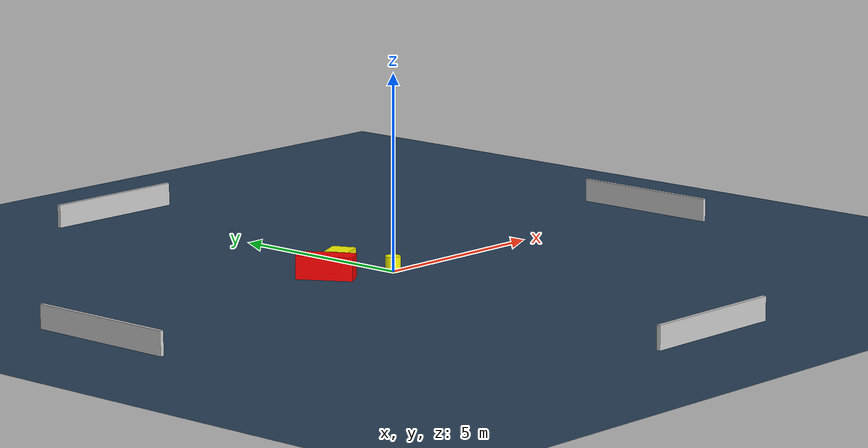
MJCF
<?xml version="1.0" ?>
<mujoco model="generated_environment">
  <option timestep="0.01" integrator="RK4" cone="elliptic"/>
  <default>
    <geom density="1"/>
  </default>
  <asset>
    <texture builtin="gradient" height="3072" name="skybox" rgb1="0.3 0.5 0.7" rgb2="0 0 0" type="skybox" width="512"/>
    <texture builtin="checker" height="300" name="groundplane" rgb1="0.2 0.3 0.4" rgb2="0.1 0.2 0.3" type="2d" width="300"/>
    <material name="groundplane" reflectance="0.2" texrepeat="5 5" texture="groundplane"/>
  </asset>
  <worldbody>
    <light dir="0 0 -1" directional="true" pos="0 0 1.5"/>
    <geom condim="3" friction="0.5 0.005 0.001" material="groundplane" name="floor" pos="0 0 0" size="0 0 0.05" type="plane"/>
    <body name="walls">
      <geom name="wall_1" condim="4" pos="-10.0 0.0 0.3" rgba="0.800000011920929 0.800000011920929 0.800000011920929 1.0" size="0.05 2.0 0.3" type="box"/>
      <geom name="wall_2" condim="4" pos="10.0 0.0 0.3" rgba="0.800000011920929 0.800000011920929 0.800000011920929 1.0" size="0.05 2.0 0.3" type="box"/>
      <geom name="wall_3" condim="4" pos="0.0 -10.0 0.3" rgba="0.800000011920929 0.800000011920929 0.800000011920929 1.0" size="2.0 0.05 0.3" type="box"/>
      <geom name="wall_4" condim="4" pos="0.0 10.0 0.3" rgba="0.800000011920929 0.800000011920929 0.800000011920929 1.0" size="2.0 0.05 0.3" type="box"/>
    </body>
    <body name="robot">
      <joint name="joint_x" type="slide" pos="0 0 0" axis="1 0 0"/>
      <joint name="joint_y" type="slide" pos="0 0 0" axis="0 1 0"/>
      <geom name="robot" type="cylinder" pos="0.0 0.0 0.2" size="0.2 0.2 0.0" mass="5.0" friction="1.0 0.005 0.0001" condim="4" rgba="1.0 1.0 0.0 1.0"/>
    </body>
    <body name="obstacle_1_movable">
      <geom name="obstacle_1_movable" condim="4" pos="-0.971686238376264 0.883511112787527 0.3" euler="0 0 113.82798770942975" friction="0.0 0.005 0.001" rgba="1.0 1.0 0.0 1.0" size="0.3053172112058806 0.3231061095188339 0.3" type="box" mass="0.1"/>
      <joint type="free"/>
    </body>
    <body name="obstacle_2_static">
      <geom name="obstacle_2_static" condim="4" pos="-1.6513759793508942 0.7303199114978872 0.3" euler="0 0 301.80414209333156" friction="0.0 0.005 0.001" rgba="1.0 0.0 0.0 1.0" size="0.71691006451876 0.27417219629255113 0.3" type="box"/>
    </body>
  </worldbody>
  <actuator>
    <motor name="actuator_x" joint="joint_x" gear="1" ctrlrange="-1 1"/>
    <motor name="actuator_y" joint="joint_y" gear="1" ctrlrange="-1 1"/>
  </actuator>
</mujoco>
